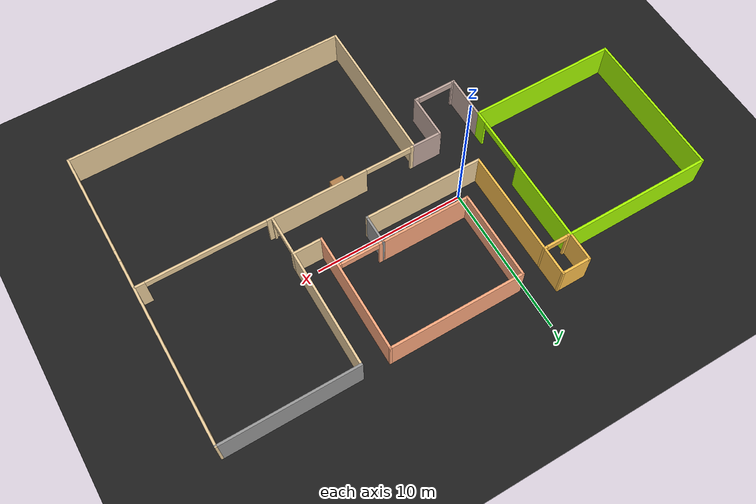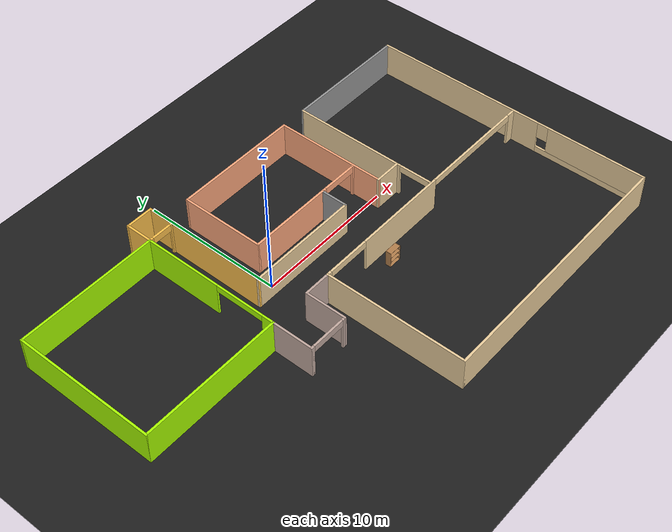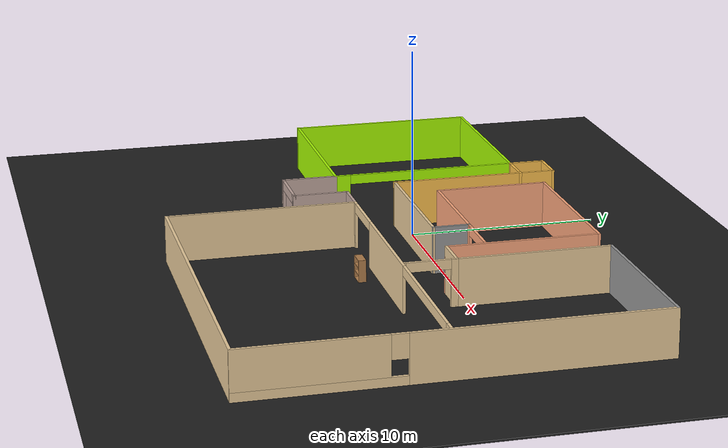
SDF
<sdf version="1.6">
 <world name="default">
  <model name="ground_plane">
   <static>1</static>
   <link name="link">
    <collision name="collision">
     <geometry><plane><normal>0 0 1</normal><size>100 100</size></plane></geometry>
     <surface><friction><ode><mu>100</mu><mu2>50</mu2></ode></friction></surface>
    </collision>
    <visual name="visual">
     <cast_shadows>0</cast_shadows>
     <geometry><plane><normal>0 0 1</normal><size>100 100</size></plane></geometry>
     <material>
      <script><uri>file://media/materials/scripts/gazebo.material</uri><name>Gazebo/FlatBlack</name></script>
     </material>
    </visual>
   </link>
  </model>
  <model name="myhouse.config">
   <pose>3.332 -2.461 0 0 -0 0</pose>
   <link name="Wall_15">
    <collision name="Wall_15_Collision">
     <geometry><box><size>9 0.15 2.5</size></box></geometry>
     <pose>0 0 1.25 0 -0 0</pose>
    </collision>
    <visual name="Wall_15_Visual">
     <pose>0 0 1.25 0 -0 0</pose>
     <geometry><box><size>9 0.15 2.5</size></box></geometry>
     <material>
      <script><uri>file://media/materials/scripts/gazebo.material</uri><name>Gazebo/Grey</name></script>
      <ambient>1 1 1 1</ambient>
     </material>
    </visual>
    <pose>12.2 9.625 0 0 -0 3.14159</pose>
   </link>
   <link name="Wall_17">
    <collision name="Wall_17_Collision">
     <geometry><box><size>8 0.15 2.5</size></box></geometry>
     <pose>0 0 1.25 0 -0 0</pose>
    </collision>
    <visual name="Wall_17_Visual">
     <pose>0 0 1.25 0 -0 0</pose>
     <geometry><box><size>8 0.15 2.5</size></box></geometry>
     <material>
      <script><uri>file://media/materials/scripts/gazebo.material</uri><name>Gazebo/Grey</name></script>
      <ambient>0.921569 0.807843 0.615686 1</ambient>
     </material>
    </visual>
    <pose>7.775 5.7 0 0 0 -1.5708</pose>
   </link>
   <link name="Wall_19">
    <collision name="Wall_19_Collision">
     <geometry><box><size>2 0.15 2.5</size></box></geometry>
     <pose>0 0 1.25 0 -0 0</pose>
    </collision>
    <visual name="Wall_19_Visual">
     <pose>0 0 1.25 0 -0 0</pose>
     <geometry><box><size>2 0.15 2.5</size></box></geometry>
     <material>
      <script><uri>file://media/materials/scripts/gazebo.material</uri><name>Gazebo/Grey</name></script>
      <ambient>0.921569 0.807843 0.615686 1</ambient>
     </material>
    </visual>
    <pose>6.85 1.775 0 0 -0 3.14159</pose>
   </link>
   <link name="Wall_20">
    <collision name="Wall_20_Collision">
     <geometry><box><size>8 0.15 2.5</size></box></geometry>
     <pose>0 0 1.25 0 -0 0</pose>
    </collision>
    <visual name="Wall_20_Visual">
     <pose>0 0 1.25 0 -0 0</pose>
     <geometry><box><size>8 0.15 2.5</size></box></geometry>
     <material>
      <script><uri>file://media/materials/scripts/gazebo.material</uri><name>Gazebo/Grey</name></script>
      <ambient>1 0.666667 0.498039 1</ambient>
     </material>
    </visual>
    <pose>5.925 5.7 0 0 -0 1.5708</pose>
   </link>
   <link name="Wall_22">
    <collision name="Wall_22_Collision">
     <geometry><box><size>9 0.15 2.5</size></box></geometry>
     <pose>0 0 1.25 0 -0 0</pose>
    </collision>
    <visual name="Wall_22_Visual">
     <pose>0 0 1.25 0 -0 0</pose>
     <geometry><box><size>9 0.15 2.5</size></box></geometry>
     <material>
      <script><uri>file://media/materials/scripts/gazebo.material</uri><name>Gazebo/Grey</name></script>
      <ambient>1 0.666667 0.498039 1</ambient>
     </material>
    </visual>
    <pose>1.5 9.625 0 0 -0 3.14159</pose>
   </link>
   <link name="Wall_24">
    <collision name="Wall_24_Collision">
     <geometry><box><size>6 0.15 2.5</size></box></geometry>
     <pose>0 0 1.25 0 -0 0</pose>
    </collision>
    <visual name="Wall_24_Visual">
     <pose>0 0 1.25 0 -0 0</pose>
     <geometry><box><size>6 0.15 2.5</size></box></geometry>
     <material>
      <script><uri>file://media/materials/scripts/gazebo.material</uri><name>Gazebo/Grey</name></script>
      <ambient>1 0.666667 0.498039 1</ambient>
     </material>
    </visual>
    <pose>-2.925 6.7 0 0 0 -1.5708</pose>
   </link>
   <link name="Wall_25">
    <collision name="Wall_25_Collision">
     <geometry><box><size>6 0.15 2.5</size></box></geometry>
     <pose>0 0 1.25 0 -0 0</pose>
    </collision>
    <visual name="Wall_25_Visual">
     <pose>0 0 1.25 0 -0 0</pose>
     <geometry><box><size>6 0.15 2.5</size></box></geometry>
     <material>
      <script><uri>file://media/materials/scripts/gazebo.material</uri><name>Gazebo/Grey</name></script>
      <ambient>1 0.666667 0.498039 1</ambient>
     </material>
    </visual>
    <pose>0 3.775 0 0 -0 0</pose>
   </link>
   <link name="Wall_26">
    <collision name="Wall_26_Collision">
     <geometry><box><size>2 0.15 2.5</size></box></geometry>
     <pose>0 0 1.25 0 -0 0</pose>
    </collision>
    <visual name="Wall_26_Visual">
     <pose>0 0 1.25 0 -0 0</pose>
     <geometry><box><size>2 0.15 2.5</size></box></geometry>
     <material>
      <script><uri>file://media/materials/scripts/gazebo.material</uri><name>Gazebo/Grey</name></script>
      <ambient>1 1 1 1</ambient>
     </material>
    </visual>
    <pose>2.925 2.85 0 0 0 -1.5708</pose>
   </link>
   <link name="Wall_27">
    <collision name="Wall_27_Collision">
     <geometry><box><size>8 0.15 2.5</size></box></geometry>
     <pose>0 0 1.25 0 -0 0</pose>
    </collision>
    <visual name="Wall_27_Visual">
     <pose>0 0 1.25 0 -0 0</pose>
     <geometry><box><size>8 0.15 2.5</size></box></geometry>
     <material>
      <script><uri>file://media/materials/scripts/gazebo.material</uri><name>Gazebo/Grey</name></script>
      <ambient>0.921569 0.807843 0.615686 1</ambient>
     </material>
    </visual>
    <pose>-1 1.925 0 0 -0 3.14159</pose>
   </link>
   <link name="Wall_28">
    <collision name="Wall_28_Collision">
     <geometry><box><size>9 0.15 2.5</size></box></geometry>
     <pose>0 0 1.25 0 -0 0</pose>
    </collision>
    <visual name="Wall_28_Visual">
     <pose>0 0 1.25 0 -0 0</pose>
     <geometry><box><size>9 0.15 2.5</size></box></geometry>
     <material>
      <script><uri>file://media/materials/scripts/gazebo.material</uri><name>Gazebo/Grey</name></script>
      <ambient>1 0.764706 0.305882 1</ambient>
     </material>
    </visual>
    <pose>-4.925 6.35 0 0 -0 1.5708</pose>
   </link>
   <link name="Wall_29">
    <collision name="Wall_29_Collision">
     <geometry><box><size>2 0.15 2.5</size></box></geometry>
     <pose>0 0 1.25 0 -0 0</pose>
    </collision>
    <visual name="Wall_29_Visual">
     <pose>0 0 1.25 0 -0 0</pose>
     <geometry><box><size>2 0.15 2.5</size></box></geometry>
     <material>
      <script><uri>file://media/materials/scripts/gazebo.material</uri><name>Gazebo/Grey</name></script>
      <ambient>1 0.764706 0.305882 1</ambient>
     </material>
    </visual>
    <pose>-5.85 10.775 0 0 -0 3.14159</pose>
   </link>
   <link name="Wall_30">
    <collision name="Wall_30_Collision">
     <geometry><box><size>2 0.15 2.5</size></box></geometry>
     <pose>0 0 1.25 0 -0 0</pose>
    </collision>
    <visual name="Wall_30_Visual">
     <pose>0 0 1.25 0 -0 0</pose>
     <geometry><box><size>2 0.15 2.5</size></box></geometry>
     <material>
      <script><uri>file://media/materials/scripts/gazebo.material</uri><name>Gazebo/Grey</name></script>
      <ambient>1 0.764706 0.305882 1</ambient>
     </material>
    </visual>
    <pose>-6.775 9.85 0 0 0 -1.5708</pose>
   </link>
   <link name="Wall_31">
    <collision name="Wall_31_Collision">
     <geometry><box><size>10 0.15 2.5</size></box></geometry>
     <pose>0 0 1.25 0 -0 0</pose>
    </collision>
    <visual name="Wall_31_Visual">
     <pose>0 0 1.25 0 -0 0</pose>
     <geometry><box><size>10 0.15 2.5</size></box></geometry>
     <material>
      <script><uri>file://media/materials/scripts/gazebo.material</uri><name>Gazebo/Grey</name></script>
      <ambient>0.666667 1 0 1</ambient>
     </material>
    </visual>
    <pose>-11.7 8.925 0 0 -0 3.14159</pose>
   </link>
   <link name="Wall_32">
    <collision name="Wall_32_Collision">
     <geometry><box><size>10 0.15 2.5</size></box></geometry>
     <pose>0 0 1.25 0 -0 0</pose>
    </collision>
    <visual name="Wall_32_Visual">
     <pose>0 0 1.25 0 -0 0</pose>
     <geometry><box><size>10 0.15 2.5</size></box></geometry>
     <material>
      <script><uri>file://media/materials/scripts/gazebo.material</uri><name>Gazebo/Grey</name></script>
      <ambient>0.666667 1 0 1</ambient>
     </material>
    </visual>
    <pose>-16.625 4 0 0 0 -1.5708</pose>
   </link>
   <link name="Wall_33">
    <collision name="Wall_33_Collision">
     <geometry><box><size>10 0.15 2.5</size></box></geometry>
     <pose>0 0 1.25 0 -0 0</pose>
    </collision>
    <visual name="Wall_33_Visual">
     <pose>0 0 1.25 0 -0 0</pose>
     <geometry><box><size>10 0.15 2.5</size></box></geometry>
     <material>
      <script><uri>file://media/materials/scripts/gazebo.material</uri><name>Gazebo/Grey</name></script>
      <ambient>0.666667 1 0 1</ambient>
     </material>
    </visual>
    <pose>-11.7 -0.924999 0 0 -0 0</pose>
   </link>
   <link name="Wall_34">
    <collision name="Wall_34_Collision">
     <geometry><box><size>3 0.15 2.5</size></box></geometry>
     <pose>0 0 1.25 0 -0 0</pose>
    </collision>
    <visual name="Wall_34_Visual">
     <pose>0 0 1.25 0 -0 0</pose>
     <geometry><box><size>3 0.15 2.5</size></box></geometry>
     <material>
      <script><uri>file://media/materials/scripts/gazebo.material</uri><name>Gazebo/Grey</name></script>
      <ambient>0.760784 0.662745 0.627451 1</ambient>
     </material>
    </visual>
    <pose>-6.775 -2.35 0 0 0 -1.5708</pose>
   </link>
   <link name="Wall_35">
    <pose>-5.35 -3.775 0 0 -0 0</pose>
    <visual name="Wall_35_Visual_0">
     <pose>-1.3701 0 1.25 0 -0 0</pose>
     <geometry><box><size>0.259804 0.15 2.5</size></box></geometry>
     <material>
      <script><uri>file://media/materials/scripts/gazebo.material</uri><name>Gazebo/Grey</name></script>
      <ambient>0.760784 0.662745 0.627451 1</ambient>
     </material>
    </visual>
    <collision name="Wall_35_Collision_0">
     <geometry><box><size>0.259804 0.15 2.5</size></box></geometry>
     <pose>-1.3701 0 1.25 0 -0 0</pose>
    </collision>
    <visual name="Wall_35_Visual_1">
     <pose>1.33743 0 1.25 0 -0 0</pose>
     <geometry><box><size>0.325141 0.15 2.5</size></box></geometry>
     <material>
      <script><uri>file://media/materials/scripts/gazebo.material</uri><name>Gazebo/Grey</name></script>
      <ambient>0.760784 0.662745 0.627451 1</ambient>
     </material>
    </visual>
    <collision name="Wall_35_Collision_1">
     <geometry><box><size>0.325141 0.15 2.5</size></box></geometry>
     <pose>1.33743 0 1.25 0 -0 0</pose>
    </collision>
    <visual name="Wall_35_Visual_2">
     <pose>-0.032669 0 2.25 0 -0 0</pose>
     <geometry><box><size>2.41506 0.15 0.5</size></box></geometry>
     <material>
      <script><uri>file://media/materials/scripts/gazebo.material</uri><name>Gazebo/Grey</name></script>
      <ambient>0.760784 0.662745 0.627451 1</ambient>
     </material>
    </visual>
    <collision name="Wall_35_Collision_2">
     <geometry><box><size>2.41506 0.15 0.5</size></box></geometry>
     <pose>-0.032669 0 2.25 0 -0 0</pose>
    </collision>
   </link>
   <link name="Wall_36">
    <collision name="Wall_36_Collision">
     <geometry><box><size>3 0.15 2.5</size></box></geometry>
     <pose>0 0 1.25 0 -0 0</pose>
    </collision>
    <visual name="Wall_36_Visual">
     <pose>0 0 1.25 0 -0 0</pose>
     <geometry><box><size>3 0.15 2.5</size></box></geometry>
     <material>
      <script><uri>file://media/materials/scripts/gazebo.material</uri><name>Gazebo/Grey</name></script>
      <ambient>0.760784 0.662745 0.627451 1</ambient>
     </material>
    </visual>
    <pose>-3.925 -2.35 0 0 -0 1.5708</pose>
   </link>
   <link name="Wall_37">
    <collision name="Wall_37_Collision">
     <geometry><box><size>2 0.15 2.5</size></box></geometry>
     <pose>0 0 1.25 0 -0 0</pose>
    </collision>
    <visual name="Wall_37_Visual">
     <pose>0 0 1.25 0 -0 0</pose>
     <geometry><box><size>2 0.15 2.5</size></box></geometry>
     <material>
      <script><uri>file://media/materials/scripts/gazebo.material</uri><name>Gazebo/Grey</name></script>
      <ambient>0.760784 0.662745 0.627451 1</ambient>
     </material>
    </visual>
    <pose>-3 -0.924999 0 0 -0 0</pose>
   </link>
   <link name="Wall_40">
    <pose>16.625 -0.575 0 0 0 -1.5708</pose>
    <visual name="Wall_40_Visual_0">
     <pose>-3.99354 0 1.25 0 -0 0</pose>
     <geometry><box><size>12.5629 0.15 2.5</size></box></geometry>
     <material>
      <script><uri>file://media/materials/scripts/gazebo.material</uri><name>Gazebo/Grey</name></script>
      <ambient>0.921569 0.807843 0.615686 1</ambient>
     </material>
    </visual>
    <collision name="Wall_40_Collision_0">
     <geometry><box><size>12.5629 0.15 2.5</size></box></geometry>
     <pose>-3.99354 0 1.25 0 -0 0</pose>
    </collision>
    <visual name="Wall_40_Visual_1">
     <pose>6.28146 0 0.25 0 -0 0</pose>
     <geometry><box><size>7.98707 0.15 0.5</size></box></geometry>
     <material>
      <script><uri>file://media/materials/scripts/gazebo.material</uri><name>Gazebo/Grey</name></script>
      <ambient>0.921569 0.807843 0.615686 1</ambient>
     </material>
    </visual>
    <collision name="Wall_40_Collision_1">
     <geometry><box><size>7.98707 0.15 0.5</size></box></geometry>
     <pose>6.28146 0 0.25 0 -0 0</pose>
    </collision>
    <visual name="Wall_40_Visual_2">
     <pose>6.68146 0 1.5 0 -0 0</pose>
     <geometry><box><size>7.18707 0.15 2</size></box></geometry>
     <material>
      <script><uri>file://media/materials/scripts/gazebo.material</uri><name>Gazebo/Grey</name></script>
      <ambient>0.921569 0.807843 0.615686 1</ambient>
     </material>
    </visual>
    <collision name="Wall_40_Collision_2">
     <geometry><box><size>7.18707 0.15 2</size></box></geometry>
     <pose>6.68146 0 1.5 0 -0 0</pose>
    </collision>
    <visual name="Wall_40_Visual_3">
     <pose>2.68793 0 1.9 0 -0 0</pose>
     <geometry><box><size>0.8 0.15 1.2</size></box></geometry>
     <material>
      <script><uri>file://media/materials/scripts/gazebo.material</uri><name>Gazebo/Grey</name></script>
      <ambient>0.921569 0.807843 0.615686 1</ambient>
     </material>
    </visual>
    <collision name="Wall_40_Collision_3">
     <geometry><box><size>0.8 0.15 1.2</size></box></geometry>
     <pose>2.68793 0 1.9 0 -0 0</pose>
    </collision>
   </link>
   <link name="Wall_42">
    <collision name="Wall_42_Collision">
     <geometry><box><size>10 0.15 2.5</size></box></geometry>
     <pose>0 0 1.25 0 -0 0</pose>
    </collision>
    <visual name="Wall_42_Visual">
     <pose>0 0 1.25 0 -0 0</pose>
     <geometry><box><size>10 0.15 2.5</size></box></geometry>
     <material>
      <script><uri>file://media/materials/scripts/gazebo.material</uri><name>Gazebo/Grey</name></script>
      <ambient>0.921569 0.807843 0.615686 1</ambient>
     </material>
    </visual>
    <pose>-2.075 -5.85 0 0 0 -1.5708</pose>
   </link>
   <link name="Wall_44">
    <collision name="Wall_44_Collision">
     <geometry><box><size>18.75 0.15 2.5</size></box></geometry>
     <pose>0 0 1.25 0 -0 0</pose>
    </collision>
    <visual name="Wall_44_Visual">
     <pose>0 0 1.25 0 -0 0</pose>
     <geometry><box><size>18.75 0.15 2.5</size></box></geometry>
     <material>
      <script><uri>file://media/materials/scripts/gazebo.material</uri><name>Gazebo/Grey</name></script>
      <ambient>0.921569 0.807843 0.615686 1</ambient>
     </material>
    </visual>
    <pose>7.225 -10.775 0 0 -0 0</pose>
   </link>
   <link name="Wall_46">
    <pose>-6.775 4 0 0 0 -1.5708</pose>
    <visual name="Wall_46_Visual_0">
     <pose>-2.20451 0 1.25 0 -0 0</pose>
     <geometry><box><size>5.59098 0.15 2.5</size></box></geometry>
     <material>
      <script><uri>file://media/materials/scripts/gazebo.material</uri><name>Gazebo/Grey</name></script>
      <ambient>0.666667 1 0 1</ambient>
     </material>
    </visual>
    <collision name="Wall_46_Collision_0">
     <geometry><box><size>5.59098 0.15 2.5</size></box></geometry>
     <pose>-2.20451 0 1.25 0 -0 0</pose>
    </collision>
    <visual name="Wall_46_Visual_1">
     <pose>4.5489 0 1.25 0 -0 0</pose>
     <geometry><box><size>0.902202 0.15 2.5</size></box></geometry>
     <material>
      <script><uri>file://media/materials/scripts/gazebo.material</uri><name>Gazebo/Grey</name></script>
      <ambient>0.666667 1 0 1</ambient>
     </material>
    </visual>
    <collision name="Wall_46_Collision_1">
     <geometry><box><size>0.902202 0.15 2.5</size></box></geometry>
     <pose>4.5489 0 1.25 0 -0 0</pose>
    </collision>
    <visual name="Wall_46_Visual_2">
     <pose>2.34439 0 2.25 0 -0 0</pose>
     <geometry><box><size>3.50682 0.15 0.5</size></box></geometry>
     <material>
      <script><uri>file://media/materials/scripts/gazebo.material</uri><name>Gazebo/Grey</name></script>
      <ambient>0.666667 1 0 1</ambient>
     </material>
    </visual>
    <collision name="Wall_46_Collision_2">
     <geometry><box><size>3.50682 0.15 0.5</size></box></geometry>
     <pose>2.34439 0 2.25 0 -0 0</pose>
    </collision>
   </link>
   <link name="Wall_48">
    <pose>7.225 -0.924999 0 0 -0 0</pose>
    <visual name="Wall_48_Visual_0">
     <pose>-9.19055 0 1.25 0 -0 0</pose>
     <geometry><box><size>0.3689 0.15 2.5</size></box></geometry>
     <material>
      <script><uri>file://media/materials/scripts/gazebo.material</uri><name>Gazebo/Grey</name></script>
      <ambient>0.921569 0.807843 0.615686 1</ambient>
     </material>
    </visual>
    <collision name="Wall_48_Collision_0">
     <geometry><box><size>0.3689 0.15 2.5</size></box></geometry>
     <pose>-9.19055 0 1.25 0 -0 0</pose>
    </collision>
    <visual name="Wall_48_Visual_1">
     <pose>-2.48259 0 1.25 0 -0 0</pose>
     <geometry><box><size>6.80594 0.15 2.5</size></box></geometry>
     <material>
      <script><uri>file://media/materials/scripts/gazebo.material</uri><name>Gazebo/Grey</name></script>
      <ambient>0.921569 0.807843 0.615686 1</ambient>
     </material>
    </visual>
    <collision name="Wall_48_Collision_1">
     <geometry><box><size>6.80594 0.15 2.5</size></box></geometry>
     <pose>-2.48259 0 1.25 0 -0 0</pose>
    </collision>
    <visual name="Wall_48_Visual_2">
     <pose>9.04701 0 1.25 0 -0 0</pose>
     <geometry><box><size>0.655974 0.15 2.5</size></box></geometry>
     <material>
      <script><uri>file://media/materials/scripts/gazebo.material</uri><name>Gazebo/Grey</name></script>
      <ambient>0.921569 0.807843 0.615686 1</ambient>
     </material>
    </visual>
    <collision name="Wall_48_Collision_2">
     <geometry><box><size>0.655974 0.15 2.5</size></box></geometry>
     <pose>9.04701 0 1.25 0 -0 0</pose>
    </collision>
    <visual name="Wall_48_Visual_3">
     <pose>-7.44583 0 2.25 0 -0 0</pose>
     <geometry><box><size>3.12054 0.15 0.5</size></box></geometry>
     <material>
      <script><uri>file://media/materials/scripts/gazebo.material</uri><name>Gazebo/Grey</name></script>
      <ambient>0.921569 0.807843 0.615686 1</ambient>
     </material>
    </visual>
    <collision name="Wall_48_Collision_3">
     <geometry><box><size>3.12054 0.15 0.5</size></box></geometry>
     <pose>-7.44583 0 2.25 0 -0 0</pose>
    </collision>
    <visual name="Wall_48_Visual_4">
     <pose>4.8197 0 2.25 0 -0 0</pose>
     <geometry><box><size>7.79865 0.15 0.5</size></box></geometry>
     <material>
      <script><uri>file://media/materials/scripts/gazebo.material</uri><name>Gazebo/Grey</name></script>
      <ambient>0.921569 0.807843 0.615686 1</ambient>
     </material>
    </visual>
    <collision name="Wall_48_Collision_4">
     <geometry><box><size>7.79865 0.15 0.5</size></box></geometry>
     <pose>4.8197 0 2.25 0 -0 0</pose>
    </collision>
   </link>
   <link name="Wall_50">
    <pose>7.775 0.475001 0 0 0 -1.5708</pose>
    <visual name="Wall_50_Visual_0">
     <pose>-1.19597 0 1.25 0 -0 0</pose>
     <geometry><box><size>0.358051 0.15 2.5</size></box></geometry>
     <material>
      <script><uri>file://media/materials/scripts/gazebo.material</uri><name>Gazebo/Grey</name></script>
      <ambient>0.921569 0.807843 0.615686 1</ambient>
     </material>
    </visual>
    <collision name="Wall_50_Collision_0">
     <geometry><box><size>0.358051 0.15 2.5</size></box></geometry>
     <pose>-1.19597 0 1.25 0 -0 0</pose>
    </collision>
    <visual name="Wall_50_Visual_1">
     <pose>1.29981 0 1.25 0 -0 0</pose>
     <geometry><box><size>0.150373 0.15 2.5</size></box></geometry>
     <material>
      <script><uri>file://media/materials/scripts/gazebo.material</uri><name>Gazebo/Grey</name></script>
      <ambient>0.921569 0.807843 0.615686 1</ambient>
     </material>
    </visual>
    <collision name="Wall_50_Collision_1">
     <geometry><box><size>0.150373 0.15 2.5</size></box></geometry>
     <pose>1.29981 0 1.25 0 -0 0</pose>
    </collision>
    <visual name="Wall_50_Visual_2">
     <pose>0.103839 0 2.25 0 -0 0</pose>
     <geometry><box><size>2.24158 0.15 0.5</size></box></geometry>
     <material>
      <script><uri>file://media/materials/scripts/gazebo.material</uri><name>Gazebo/Grey</name></script>
      <ambient>0.921569 0.807843 0.615686 1</ambient>
     </material>
    </visual>
    <collision name="Wall_50_Collision_2">
     <geometry><box><size>2.24158 0.15 0.5</size></box></geometry>
     <pose>0.103839 0 2.25 0 -0 0</pose>
    </collision>
   </link>
   <link name="Wall_52">
    <pose>4.35 3.775 0 0 -0 0</pose>
    <visual name="Wall_52_Visual_0">
     <pose>-1.30967 0 1.25 0 -0 0</pose>
     <geometry><box><size>0.380655 0.15 2.5</size></box></geometry>
     <material>
      <script><uri>file://media/materials/scripts/gazebo.material</uri><name>Gazebo/Grey</name></script>
      <ambient>1 0.666667 0.498039 1</ambient>
     </material>
    </visual>
    <collision name="Wall_52_Collision_0">
     <geometry><box><size>0.380655 0.15 2.5</size></box></geometry>
     <pose>-1.30967 0 1.25 0 -0 0</pose>
    </collision>
    <visual name="Wall_52_Visual_1">
     <pose>1.43833 0 1.25 0 -0 0</pose>
     <geometry><box><size>0.123333 0.15 2.5</size></box></geometry>
     <material>
      <script><uri>file://media/materials/scripts/gazebo.material</uri><name>Gazebo/Grey</name></script>
      <ambient>1 0.666667 0.498039 1</ambient>
     </material>
    </visual>
    <collision name="Wall_52_Collision_1">
     <geometry><box><size>0.123333 0.15 2.5</size></box></geometry>
     <pose>1.43833 0 1.25 0 -0 0</pose>
    </collision>
    <visual name="Wall_52_Visual_2">
     <pose>0.128661 0 2.25 0 -0 0</pose>
     <geometry><box><size>2.49601 0.15 0.5</size></box></geometry>
     <material>
      <script><uri>file://media/materials/scripts/gazebo.material</uri><name>Gazebo/Grey</name></script>
      <ambient>1 0.666667 0.498039 1</ambient>
     </material>
    </visual>
    <collision name="Wall_52_Collision_2">
     <geometry><box><size>2.49601 0.15 0.5</size></box></geometry>
     <pose>0.128661 0 2.25 0 -0 0</pose>
    </collision>
   </link>
   <link name="Wall_54">
    <pose>-5.85 8.925 0 0 -0 0</pose>
    <visual name="Wall_54_Visual_0">
     <pose>-0.84004 0 1.25 0 -0 0</pose>
     <geometry><box><size>0.319921 0.15 2.5</size></box></geometry>
     <material>
      <script><uri>file://media/materials/scripts/gazebo.material</uri><name>Gazebo/Grey</name></script>
      <ambient>1 0.764706 0.305882 1</ambient>
     </material>
    </visual>
    <collision name="Wall_54_Collision_0">
     <geometry><box><size>0.319921 0.15 2.5</size></box></geometry>
     <pose>-0.84004 0 1.25 0 -0 0</pose>
    </collision>
    <visual name="Wall_54_Visual_1">
     <pose>0.862662 0 1.25 0 -0 0</pose>
     <geometry><box><size>0.274676 0.15 2.5</size></box></geometry>
     <material>
      <script><uri>file://media/materials/scripts/gazebo.material</uri><name>Gazebo/Grey</name></script>
      <ambient>1 0.764706 0.305882 1</ambient>
     </material>
    </visual>
    <collision name="Wall_54_Collision_1">
     <geometry><box><size>0.274676 0.15 2.5</size></box></geometry>
     <pose>0.862662 0 1.25 0 -0 0</pose>
    </collision>
    <visual name="Wall_54_Visual_2">
     <pose>0.022623 0 2.25 0 -0 0</pose>
     <geometry><box><size>1.4054 0.15 0.5</size></box></geometry>
     <material>
      <script><uri>file://media/materials/scripts/gazebo.material</uri><name>Gazebo/Grey</name></script>
      <ambient>1 0.764706 0.305882 1</ambient>
     </material>
    </visual>
    <collision name="Wall_54_Collision_2">
     <geometry><box><size>1.4054 0.15 0.5</size></box></geometry>
     <pose>0.022623 0 2.25 0 -0 0</pose>
    </collision>
   </link>
   <static>1</static>
  </model>
  <model name="ground_plane_0">
   <static>1</static>
   <link name="link">
    <collision name="collision">
     <geometry><plane><normal>0 0 1</normal><size>100 100</size></plane></geometry>
     <surface><friction><ode><mu>100</mu><mu2>50</mu2></ode></friction></surface>
    </collision>
    <visual name="visual">
     <cast_shadows>0</cast_shadows>
     <geometry><plane><normal>0 0 1</normal><size>100 100</size></plane></geometry>
     <material>
      <script><uri>file://media/materials/scripts/gazebo.material</uri><name>Gazebo/FlatBlack</name></script>
     </material>
    </visual>
   </link>
   <pose>5.89907 11.0236 0 0 -0 0</pose>
  </model>
  <model name="bookshelf_1">
   <static>1</static>
   <link name="link">
    <inertial><mass>1</mass></inertial>
    <collision name="back">
     <pose>0 0.005 0.6 0 -0 0</pose>
     <geometry><box><size>0.9 0.01 1.2</size></box></geometry>
    </collision>
    <visual name="visual1">
     <pose>0 0.005 0.6 0 -0 0</pose>
     <geometry><box><size>0.9 0.01 1.2</size></box></geometry>
     <material>
      <script><uri>file://media/materials/scripts/gazebo.material</uri><name>Gazebo/Wood</name></script>
     </material>
    </visual>
    <collision name="left_side">
     <pose>0.45 -0.195 0.6 0 -0 0</pose>
     <geometry><box><size>0.02 0.4 1.2</size></box></geometry>
    </collision>
    <visual name="visual2">
     <pose>0.45 -0.195 0.6 0 -0 0</pose>
     <geometry><box><size>0.02 0.4 1.2</size></box></geometry>
     <material>
      <script><uri>file://media/materials/scripts/gazebo.material</uri><name>Gazebo/Wood</name></script>
     </material>
    </visual>
    <collision name="right_side">
     <pose>-0.45 -0.195 0.6 0 -0 0</pose>
     <geometry><box><size>0.02 0.4 1.2</size></box></geometry>
    </collision>
    <visual name="visual3">
     <pose>-0.45 -0.195 0.6 0 -0 0</pose>
     <geometry><box><size>0.02 0.4 1.2</size></box></geometry>
     <material>
      <script><uri>file://media/materials/scripts/gazebo.material</uri><name>Gazebo/Wood</name></script>
     </material>
    </visual>
    <collision name="bottom">
     <pose>0 -0.195 0.03 0 -0 0</pose>
     <geometry><box><size>0.88 0.4 0.06</size></box></geometry>
    </collision>
    <visual name="visual4">
     <pose>0 -0.195 0.03 0 -0 0</pose>
     <geometry><box><size>0.88 0.4 0.06</size></box></geometry>
     <material>
      <script><uri>file://media/materials/scripts/gazebo.material</uri><name>Gazebo/Wood</name></script>
     </material>
    </visual>
    <collision name="top">
     <pose>0 -0.195 1.19 0 -0 0</pose>
     <geometry><box><size>0.88 0.4 0.02</size></box></geometry>
    </collision>
    <visual name="visual5">
     <pose>0 -0.195 1.19 0 -0 0</pose>
     <geometry><box><size>0.88 0.4 0.02</size></box></geometry>
     <material>
      <script><uri>file://media/materials/scripts/gazebo.material</uri><name>Gazebo/Wood</name></script>
     </material>
    </visual>
    <collision name="low_shelf">
     <pose>0 -0.195 0.43 0 -0 0</pose>
     <geometry><box><size>0.88 0.4 0.02</size></box></geometry>
    </collision>
    <visual name="visual6">
     <pose>0 -0.195 0.43 0 -0 0</pose>
     <geometry><box><size>0.88 0.4 0.02</size></box></geometry>
     <material>
      <script><uri>file://media/materials/scripts/gazebo.material</uri><name>Gazebo/Wood</name></script>
     </material>
    </visual>
    <collision name="high_shelf">
     <pose>0 -0.195 0.8 0 -0 0</pose>
     <geometry><box><size>0.88 0.4 0.02</size></box></geometry>
    </collision>
    <visual name="visual7">
     <pose>0 -0.195 0.8 0 -0 0</pose>
     <geometry><box><size>0.88 0.4 0.02</size></box></geometry>
     <material>
      <script><uri>file://media/materials/scripts/gazebo.material</uri><name>Gazebo/Wood</name></script>
     </material>
    </visual>
   </link>
   <pose>6.22886 -4.10104 0 0 -0 0</pose>
  </model>
 </world>
</sdf>
